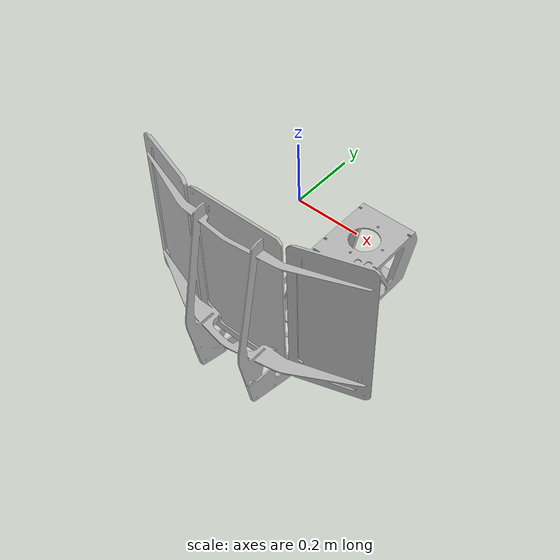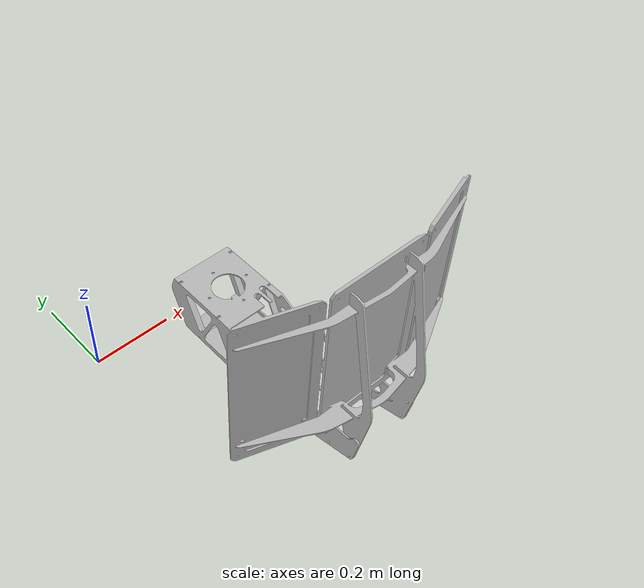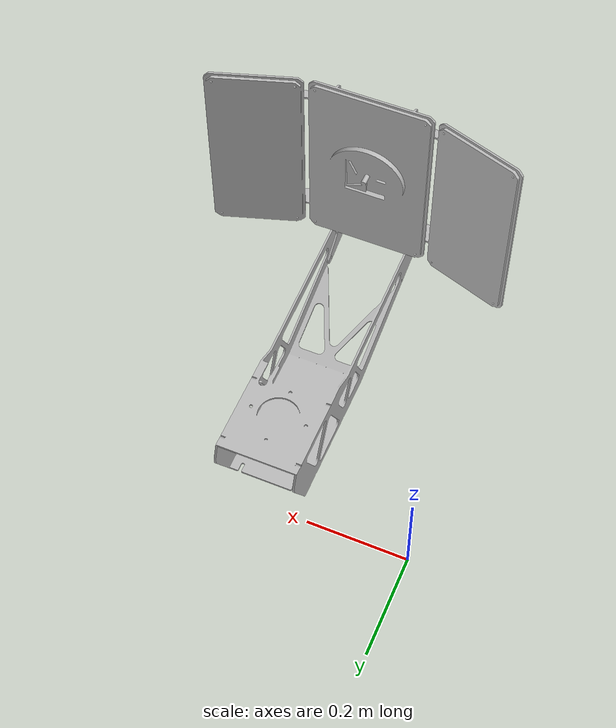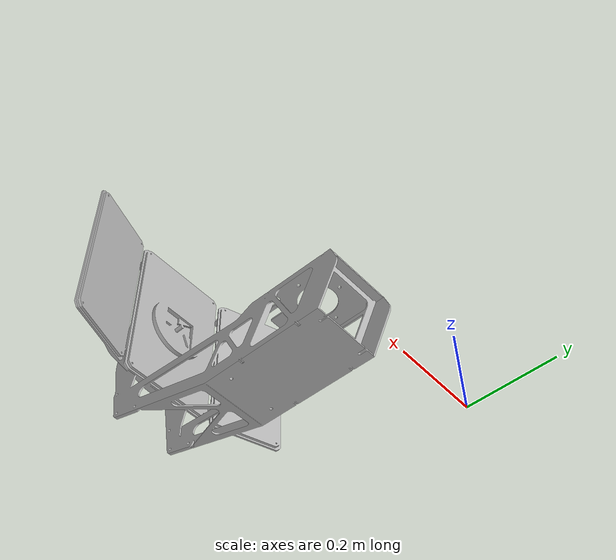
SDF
<?xml version="1.0"?>
<sdf version="1.5">
  <model name="workcell">
  <pose>0.0 0.0 0.0 1.57 0.0 0.0 </pose>
  <static>true</static>
    <link name="link">
       <inertial>
	<pose>0.0 0.0 0.0 0.0 0.0 0.0</pose>
        <mass>0.0001</mass>
        <inertia>
          <ixx>0.00001</ixx>
          <ixy>0</ixy>
          <ixz>0</ixz>
          <iyy>0.00001</iyy>
          <iyz>0</iyz>
          <izz>0.00001</izz>
        </inertia>
      </inertial>

      <collision name="collision">
        <geometry>
          <mesh>
            <uri>model://workcell/meshes/workcell_practice.stl</uri>
            <scale>0.001 0.001 0.001</scale>
          </mesh>
        </geometry>
	<surface>
        <friction>
          <ode>
            <mu>100.0</mu>
            <mu2>50.0</mu2>
          </ode>
        </friction>
	<contact>
                <ode>
                  <kp>1000000.0</kp>
                  <kd>100.0</kd>
                  <max_vel>0.0</max_vel>
                  <min_depth>0.003</min_depth>
                </ode>
              </contact>
      </surface>
      </collision>
      <visual name="visual">
        <geometry>
	  <mesh>
            <uri>model://workcell/meshes/workcell_practice.stl</uri>
            <scale>0.001 0.001 0.001</scale>
          </mesh>
        </geometry>

      </visual>
    </link>
  </model>
</sdf>
